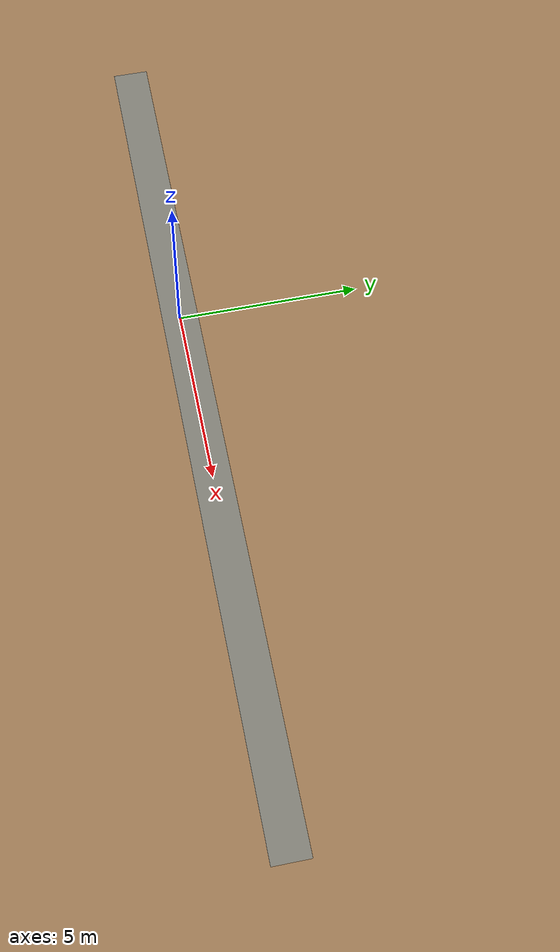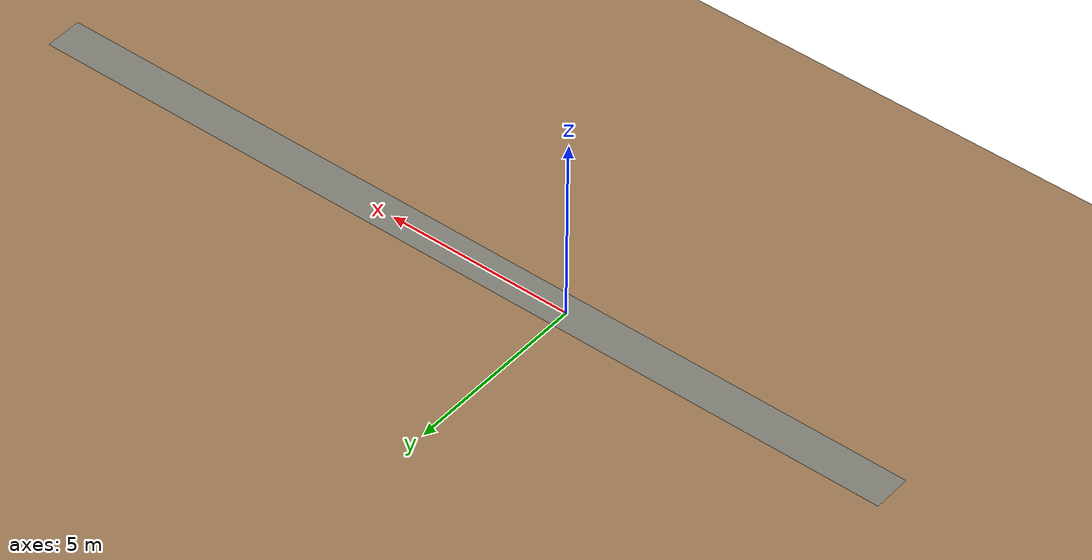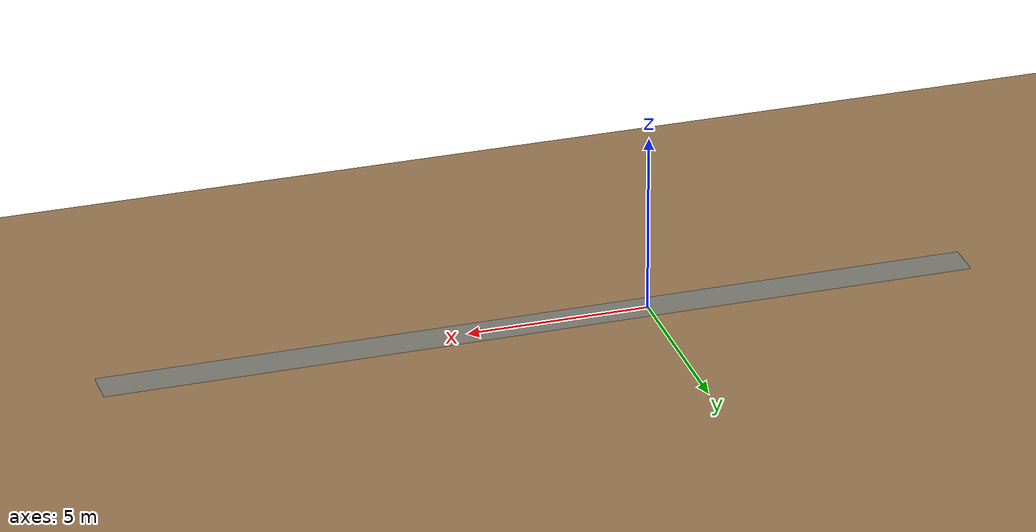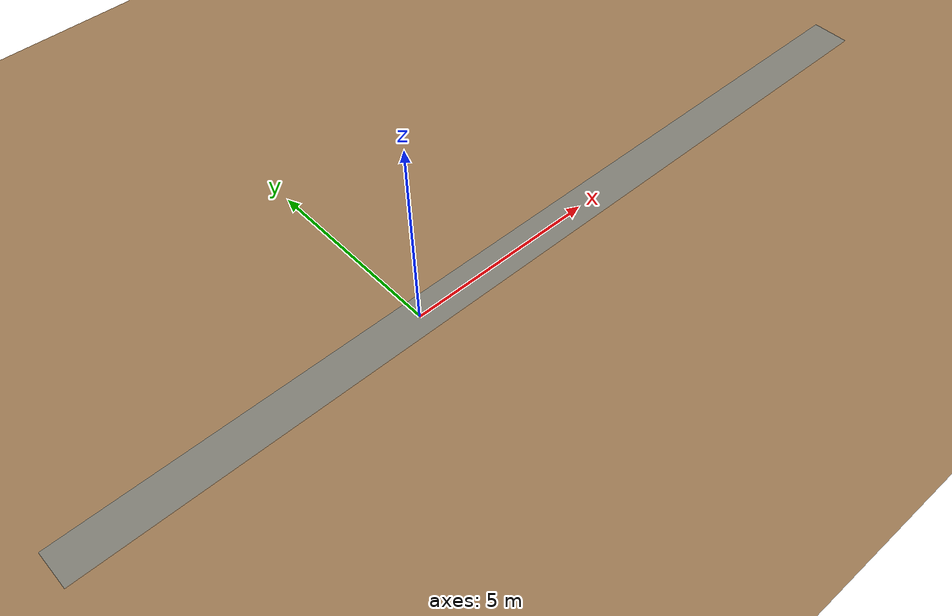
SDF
<?xml version="1.0"?>
<sdf version="1.6">
  <world name="mars_dunes">

    <physics type="ode">
      <max_step_size>0.001</max_step_size>
      <real_time_factor>1.0</real_time_factor>
      <real_time_update_rate>1000</real_time_update_rate>
    </physics>

    <gravity>0 0 -3.711</gravity>

    <include>
      <uri>model://sun</uri>
    </include>

    <include>
      <uri>model://regolith_dune_patch</uri>
      <name>terrain</name>
      <pose>0 0 0 0 0 0</pose>
    </include>

    <plugin name="terrain_preset" filename="libterrain_preset_plugin.so">
      <preset>regolith_loose</preset>
      <target_model>terrain</target_model>
      <target_link>ground</target_link>
    </plugin>

    <!-- Optional visual marker: nominal traverse corridor -->
    <model name="traverse_marker">
      <static>true</static>
      <pose>3 0 0.02 0 0 0</pose>
      <link name="marker">
        <visual name="visual">
          <geometry>
            <box>
              <size>24.0 1.0 0.02</size>
            </box>
          </geometry>
          <material>
            <ambient>0.2 0.6 0.9 0.25</ambient>
            <diffuse>0.2 0.6 0.9 0.25</diffuse>
          </material>
        </visual>
      </link>
    </model>

  </world>
</sdf>

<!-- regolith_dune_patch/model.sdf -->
<sdf version="1.6">
  <model name="regolith_dune_patch">
    <static>true</static>
    <link name="ground">
      <collision name="collision">
        <geometry>
          <plane>
            <normal>0 0 1</normal>
            <size>80 80</size>
          </plane>
        </geometry>
      </collision>

      <visual name="visual">
        <geometry>
          <plane>
            <normal>0 0 1</normal>
            <size>80 80</size>
          </plane>
        </geometry>
        <material>
          <ambient>0.62 0.48 0.33 1</ambient>
          <diffuse>0.62 0.48 0.33 1</diffuse>
        </material>
      </visual>
    </link>
  </model>
</sdf>
